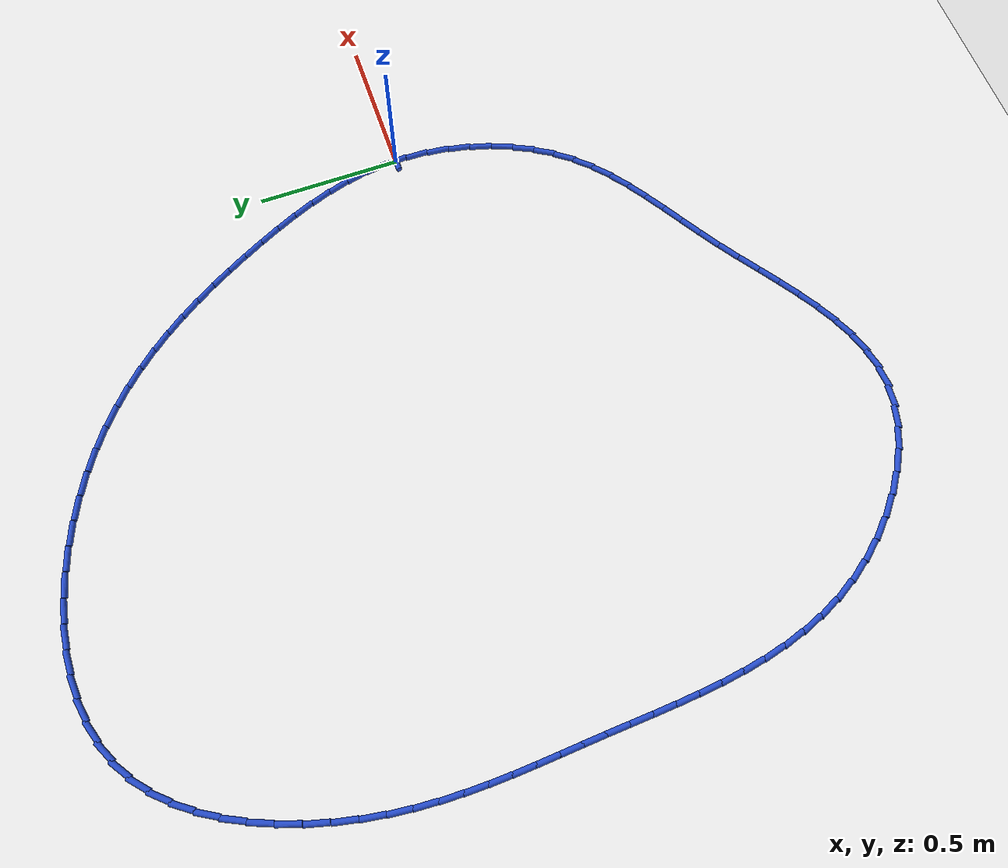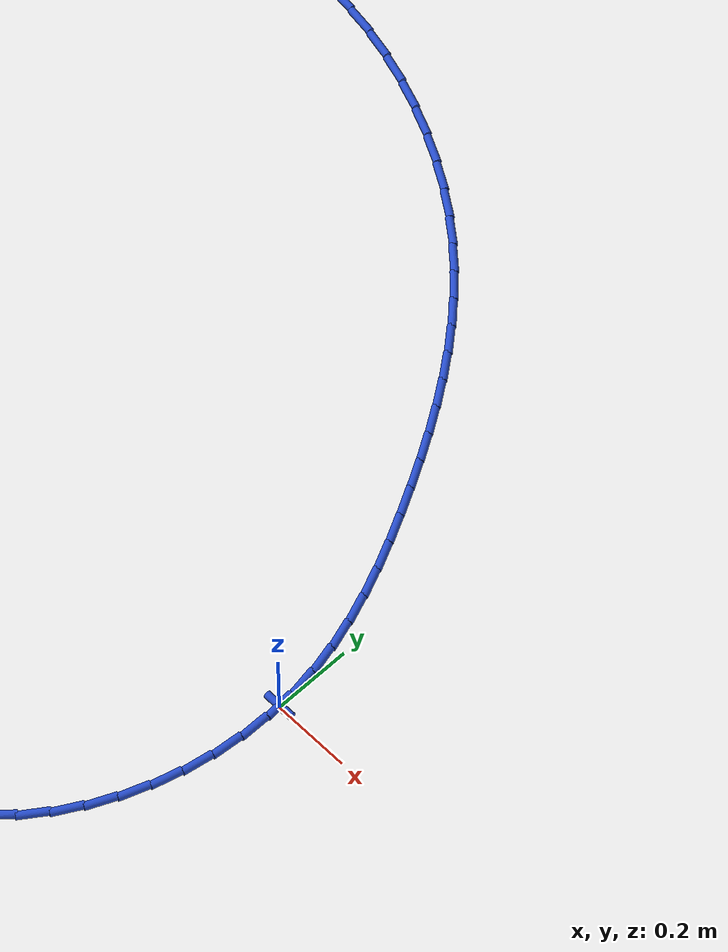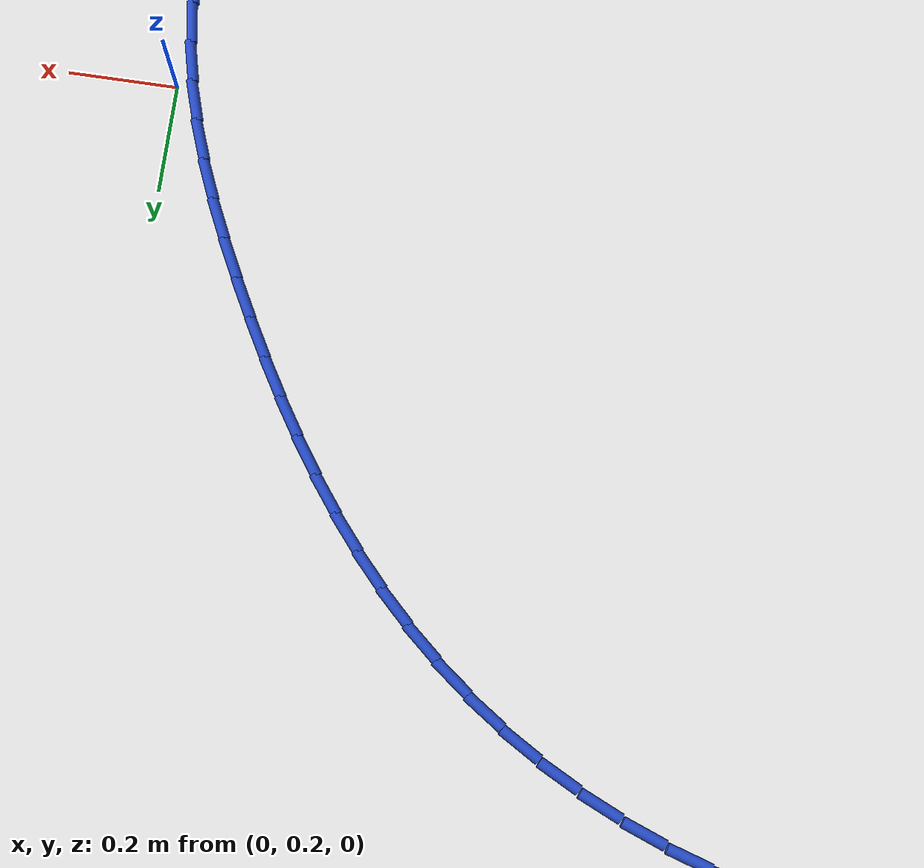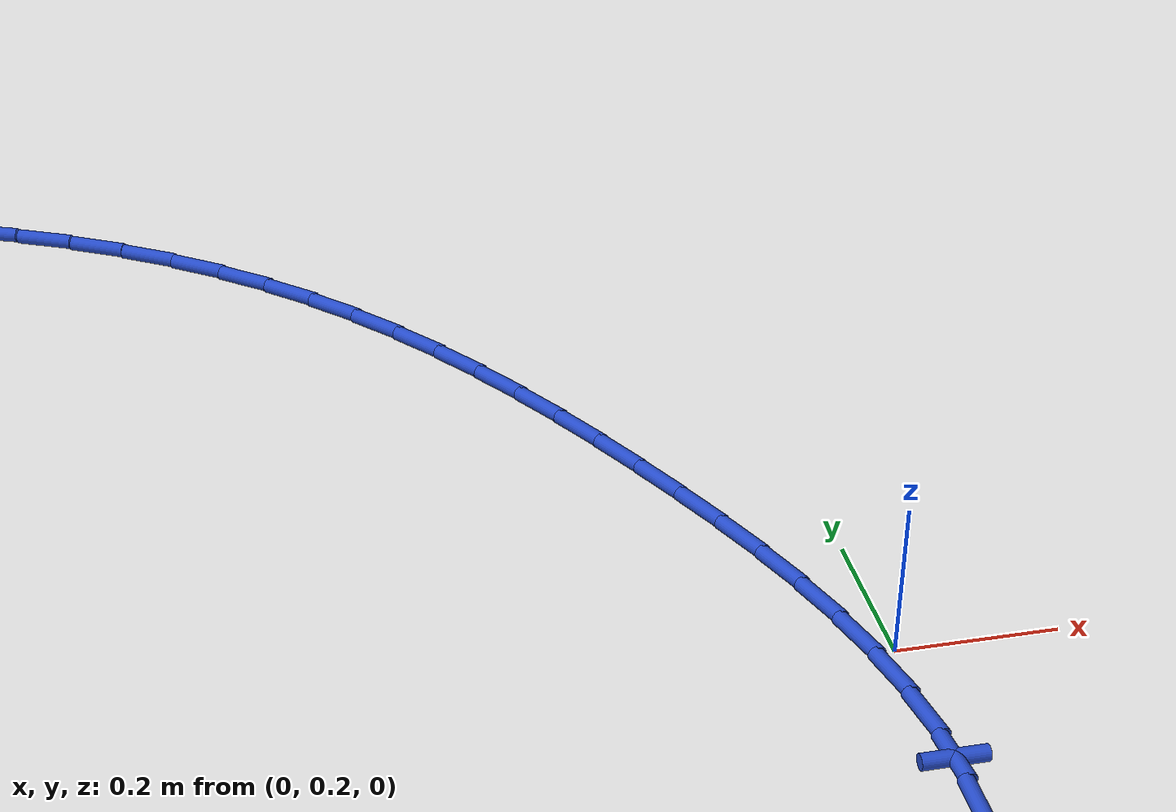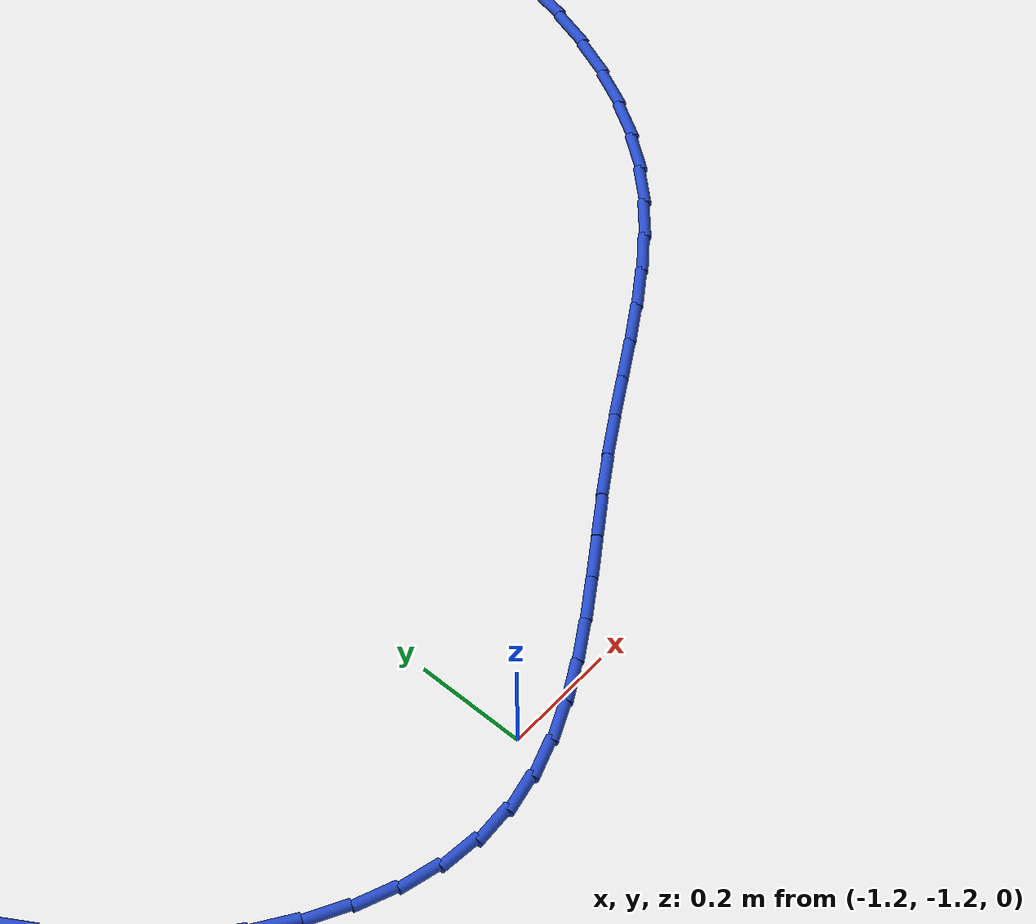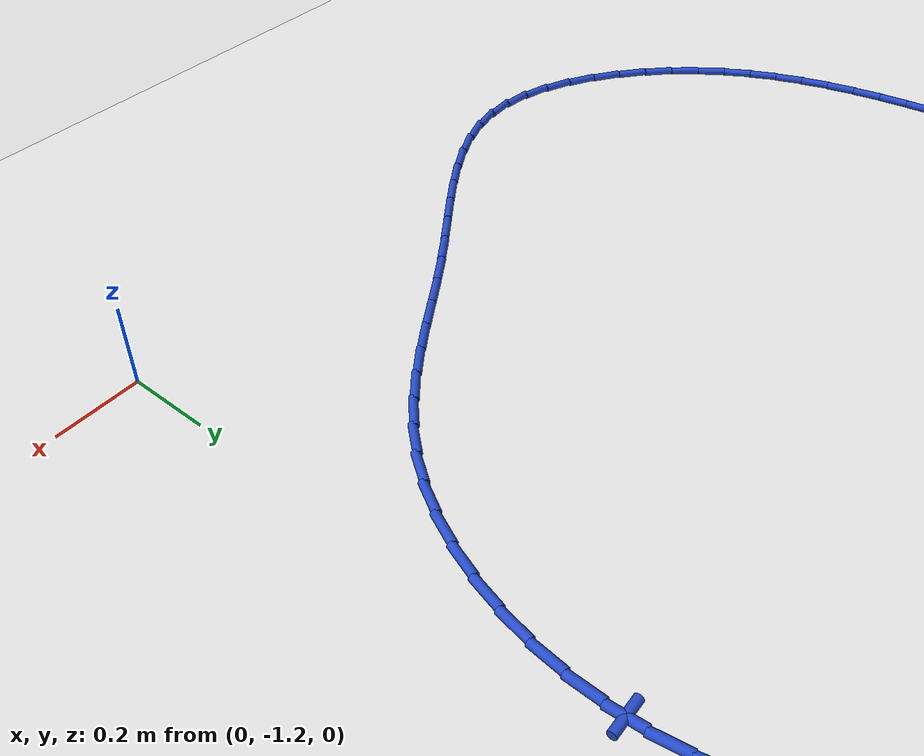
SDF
<sdf version="1.6">
 <world name="default">
  <light name="sun" type="directional">
   <pose>0 0 10 0 -0 0</pose>
   <diffuse>0.8 0.8 0.8 1</diffuse>
   <specular>0.2 0.2 0.2 1</specular>
   <attenuation>
    <range>1000</range>
    <constant>0.9</constant>
    <linear>0.01</linear>
    <quadratic>0.001</quadratic>
   </attenuation>
   <direction>-0.5 0.1 -0.9</direction>
  </light>
  <model name="ground_plane">
   <static>1</static>
   <link name="link">
    <collision name="collision">
     <geometry><plane><normal>0 0 1</normal><size>100 100</size></plane></geometry>
     <surface><friction><ode><mu>100</mu><mu2>50</mu2></ode></friction></surface>
    </collision>
    <visual name="visual">
     <cast_shadows>0</cast_shadows>
     <geometry><plane><normal>0 0 1</normal><size>100 100</size></plane></geometry>
     <material>
      <script><uri>file://media/materials/scripts/gazebo.material</uri><name>Gazebo/WhiteGlow</name></script>
     </material>
    </visual>
   </link>
  </model>
  <gravity>0 0 -9.8</gravity>
  <magnetic_field>6e-06 2.3e-05 -4.2e-05</magnetic_field>
  <atmosphere type="adiabatic"/>
  <physics name="default_physics" default="0" type="ode">
   <max_step_size>0.001</max_step_size>
   <real_time_factor>1</real_time_factor>
   <real_time_update_rate>1000</real_time_update_rate>
  </physics>
  <scene><ambient>0.4 0.4 0.4 1</ambient><background>0.7 0.7 0.7 1</background><shadows>1</shadows></scene>
  <spherical_coordinates>
   <surface_model>EARTH_WGS84</surface_model>
   <latitude_deg>0</latitude_deg>
   <longitude_deg>0</longitude_deg>
   <elevation>0</elevation>
   <heading_deg>0</heading_deg>
  </spherical_coordinates>
  <model name="line">
   <link name="link_0">
    <pose>-6.938893903907228e-18 1.3877787807814457e-17 0.01 0 1.57 -1.4888936543361022</pose>
    <collision name="collision">
     <geometry><cylinder><radius>0.01</radius><length>0.08</length></cylinder></geometry>
    </collision>
    <visual name="visual">
     <material>
      <script><name>Gazebo/Blue</name><uri>file://media/materials/scripts/gazebo.material</uri></script>
     </material>
     <geometry><cylinder><radius>0.01</radius><length>0.08</length></cylinder></geometry>
    </visual>
   </link>
   <link name="link_1">
    <pose>-0.006236742922896801 0.07597787763436015 0.01 0 1.57 -1.4052231200887637</pose>
    <collision name="collision">
     <geometry><cylinder><radius>0.01</radius><length>0.08</length></cylinder></geometry>
    </collision>
    <visual name="visual">
     <material>
      <script><name>Gazebo/Blue</name><uri>file://media/materials/scripts/gazebo.material</uri></script>
     </material>
     <geometry><cylinder><radius>0.01</radius><length>0.08</length></cylinder></geometry>
    </visual>
   </link>
   <link name="link_2">
    <pose>-0.01872526614852402 0.15071335084749068 0.01 0 1.57 -1.3305049539637646</pose>
    <collision name="collision">
     <geometry><cylinder><radius>0.01</radius><length>0.08</length></cylinder></geometry>
    </collision>
    <visual name="visual">
     <material>
      <script><name>Gazebo/Blue</name><uri>file://media/materials/scripts/gazebo.material</uri></script>
     </material>
     <geometry><cylinder><radius>0.01</radius><length>0.08</length></cylinder></geometry>
    </visual>
   </link>
   <link name="link_3">
    <pose>-0.03674393916641838 0.22425128700449098 0.01 0 1.57 -1.2653108638893957</pose>
    <collision name="collision">
     <geometry><cylinder><radius>0.01</radius><length>0.08</length></cylinder></geometry>
    </collision>
    <visual name="visual">
     <material>
      <script><name>Gazebo/Blue</name><uri>file://media/materials/scripts/gazebo.material</uri></script>
     </material>
     <geometry><cylinder><radius>0.01</radius><length>0.08</length></cylinder></geometry>
    </visual>
   </link>
   <link name="link_4">
    <pose>-0.059571131466116624 0.2966365534704605 0.01 0 1.57 -1.2097517085886498</pose>
    <collision name="collision">
     <geometry><cylinder><radius>0.01</radius><length>0.08</length></cylinder></geometry>
    </collision>
    <visual name="visual">
     <material>
      <script><name>Gazebo/Blue</name><uri>file://media/materials/scripts/gazebo.material</uri></script>
     </material>
     <geometry><cylinder><radius>0.01</radius><length>0.08</length></cylinder></geometry>
    </visual>
   </link>
   <link name="link_5">
    <pose>-0.08648521253715538 0.36791401761049825 0.01 0 1.57 -1.1636519283027307</pose>
    <collision name="collision">
     <geometry><cylinder><radius>0.01</radius><length>0.08</length></cylinder></geometry>
    </collision>
    <visual name="visual">
     <material>
      <script><name>Gazebo/Blue</name><uri>file://media/materials/scripts/gazebo.material</uri></script>
     </material>
     <geometry><cylinder><radius>0.01</radius><length>0.08</length></cylinder></geometry>
    </visual>
   </link>
   <link name="link_6">
    <pose>-0.11676455186907142 0.43812854678970387 0.01 0 1.57 -1.126703823395102</pose>
    <collision name="collision">
     <geometry><cylinder><radius>0.01</radius><length>0.08</length></cylinder></geometry>
    </collision>
    <visual name="visual">
     <material>
      <script><name>Gazebo/Blue</name><uri>file://media/materials/scripts/gazebo.material</uri></script>
     </material>
     <geometry><cylinder><radius>0.01</radius><length>0.08</length></cylinder></geometry>
    </visual>
   </link>
   <link name="link_7">
    <pose>-0.14968751895140148 0.5073250083731766 0.01 0 1.57 -1.0985865208283223</pose>
    <collision name="collision">
     <geometry><cylinder><radius>0.01</radius><length>0.08</length></cylinder></geometry>
    </collision>
    <visual name="visual">
     <material>
      <script><name>Gazebo/Blue</name><uri>file://media/materials/scripts/gazebo.material</uri></script>
     </material>
     <geometry><cylinder><radius>0.01</radius><length>0.08</length></cylinder></geometry>
    </visual>
   </link>
   <link name="link_8">
    <pose>-0.1845324832736822 0.5755482697260156 0.01 0 1.57 -1.077847580366099</pose>
    <collision name="collision">
     <geometry><cylinder><radius>0.01</radius><length>0.08</length></cylinder></geometry>
    </collision>
    <visual name="visual">
     <material>
      <script><name>Gazebo/Blue</name><uri>file://media/materials/scripts/gazebo.material</uri></script>
     </material>
     <geometry><cylinder><radius>0.01</radius><length>0.08</length></cylinder></geometry>
    </visual>
   </link>
   <link name="link_9">
    <pose>-0.2206705042800834 0.64282162328413 0.01 0 1.57 -1.0559902220845883</pose>
    <collision name="collision">
     <geometry><cylinder><radius>0.01</radius><length>0.08</length></cylinder></geometry>
    </collision>
    <visual name="visual">
     <material>
      <script><name>Gazebo/Blue</name><uri>file://media/materials/scripts/gazebo.material</uri></script>
     </material>
     <geometry><cylinder><radius>0.01</radius><length>0.08</length></cylinder></geometry>
    </visual>
   </link>
   <link name="link_10">
    <pose>-0.2581170499248901 0.7090183660709766 0.01 0 1.57 -1.0293994203446202</pose>
    <collision name="collision">
     <geometry><cylinder><radius>0.01</radius><length>0.08</length></cylinder></geometry>
    </collision>
    <visual name="visual">
     <material>
      <script><name>Gazebo/Blue</name><uri>file://media/materials/scripts/gazebo.material</uri></script>
     </material>
     <geometry><cylinder><radius>0.01</radius><length>0.08</length></cylinder></geometry>
    </visual>
   </link>
   <link name="link_11">
    <pose>-0.29716124830380514 0.7739480967492063 0.01 0 1.57 -0.9980277353000951</pose>
    <collision name="collision">
     <geometry><cylinder><radius>0.01</radius><length>0.08</length></cylinder></geometry>
    </collision>
    <visual name="visual">
     <material>
      <script><name>Gazebo/Blue</name><uri>file://media/materials/scripts/gazebo.material</uri></script>
     </material>
     <geometry><cylinder><radius>0.01</radius><length>0.08</length></cylinder></geometry>
    </visual>
   </link>
   <link name="link_12">
    <pose>-0.3380932247508772 0.8374201818598043 0.01 0 1.57 -0.9618832202093195</pose>
    <collision name="collision">
     <geometry><cylinder><radius>0.01</radius><length>0.08</length></cylinder></geometry>
    </collision>
    <visual name="visual">
     <material>
      <script><name>Gazebo/Blue</name><uri>file://media/materials/scripts/gazebo.material</uri></script>
     </material>
     <geometry><cylinder><radius>0.01</radius><length>0.08</length></cylinder></geometry>
    </visual>
   </link>
   <link name="link_13">
    <pose>-0.38120310460015494 0.8992439879437555 0.01 0 1.57 -0.9210380110641261</pose>
    <collision name="collision">
     <geometry><cylinder><radius>0.01</radius><length>0.08</length></cylinder></geometry>
    </collision>
    <visual name="visual">
     <material>
      <script><name>Gazebo/Blue</name><uri>file://media/materials/scripts/gazebo.material</uri></script>
     </material>
     <geometry><cylinder><radius>0.01</radius><length>0.08</length></cylinder></geometry>
    </visual>
   </link>
   <link name="link_14">
    <pose>-0.42678101318568673 0.9592288815420446 0.01 0 1.57 -0.8756514801662385</pose>
    <collision name="collision">
     <geometry><cylinder><radius>0.01</radius><length>0.08</length></cylinder></geometry>
    </collision>
    <visual name="visual">
     <material>
      <script><name>Gazebo/Blue</name><uri>file://media/materials/scripts/gazebo.material</uri></script>
     </material>
     <geometry><cylinder><radius>0.01</radius><length>0.08</length></cylinder></geometry>
    </visual>
   </link>
   <link name="link_15">
    <pose>-0.47511707584152135 1.0171842291956568 0.01 0 1.57 -0.8259924119694636</pose>
    <collision name="collision">
     <geometry><cylinder><radius>0.01</radius><length>0.08</length></cylinder></geometry>
    </collision>
    <visual name="visual">
     <material>
      <script><name>Gazebo/Blue</name><uri>file://media/materials/scripts/gazebo.material</uri></script>
     </material>
     <geometry><cylinder><radius>0.01</radius><length>0.08</length></cylinder></geometry>
    </visual>
   </link>
   <link name="link_16">
    <pose>-0.5265014179017073 1.072919397445577 0.01 0 1.57 -0.7724564619438936</pose>
    <collision name="collision">
     <geometry><cylinder><radius>0.01</radius><length>0.08</length></cylinder></geometry>
    </collision>
    <visual name="visual">
     <material>
      <script><name>Gazebo/Blue</name><uri>file://media/materials/scripts/gazebo.material</uri></script>
     </material>
     <geometry><cylinder><radius>0.01</radius><length>0.08</length></cylinder></geometry>
    </visual>
   </link>
   <link name="link_17">
    <pose>-0.5812241647002934 1.1262437528327902 0.01 0 1.57 -0.715574430933978</pose>
    <collision name="collision">
     <geometry><cylinder><radius>0.01</radius><length>0.08</length></cylinder></geometry>
    </collision>
    <visual name="visual">
     <material>
      <script><name>Gazebo/Blue</name><uri>file://media/materials/scripts/gazebo.material</uri></script>
     </material>
     <geometry><cylinder><radius>0.01</radius><length>0.08</length></cylinder></geometry>
    </visual>
   </link>
   <link name="link_18">
    <pose>-0.6395754415713277 1.176966661898281 0.01 0 1.57 -0.656007119483028</pose>
    <collision name="collision">
     <geometry><cylinder><radius>0.01</radius><length>0.08</length></cylinder></geometry>
    </collision>
    <visual name="visual">
     <material>
      <script><name>Gazebo/Blue</name><uri>file://media/materials/scripts/gazebo.material</uri></script>
     </material>
     <geometry><cylinder><radius>0.01</radius><length>0.08</length></cylinder></geometry>
    </visual>
   </link>
   <link name="link_19">
    <pose>-0.7018453738488593 1.2248974911830346 0.01 0 1.57 -0.5945751520440786</pose>
    <collision name="collision">
     <geometry><cylinder><radius>0.01</radius><length>0.08</length></cylinder></geometry>
    </collision>
    <visual name="visual">
     <material>
      <script><name>Gazebo/Blue</name><uri>file://media/materials/scripts/gazebo.material</uri></script>
     </material>
     <geometry><cylinder><radius>0.01</radius><length>0.08</length></cylinder></geometry>
    </visual>
   </link>
   <link name="link_20">
    <pose>-0.7683124132928517 1.2698426539536425 0.01 0 1.57 -0.5335867637004317</pose>
    <collision name="collision">
     <geometry><cylinder><radius>0.01</radius><length>0.08</length></cylinder></geometry>
    </collision>
    <visual name="visual">
     <material>
      <script><name>Gazebo/Blue</name><uri>file://media/materials/scripts/gazebo.material</uri></script>
     </material>
     <geometry><cylinder><radius>0.01</radius><length>0.08</length></cylinder></geometry>
    </visual>
   </link>
   <link name="link_21">
    <pose>-0.8388313485755986 1.3115013817910253 0.01 0 1.57 -0.4743137648658727</pose>
    <collision name="collision">
     <geometry><cylinder><radius>0.01</radius><length>0.08</length></cylinder></geometry>
    </collision>
    <visual name="visual">
     <material>
      <script><name>Gazebo/Blue</name><uri>file://media/materials/scripts/gazebo.material</uri></script>
     </material>
     <geometry><cylinder><radius>0.01</radius><length>0.08</length></cylinder></geometry>
    </visual>
   </link>
   <link name="link_22">
    <pose>-0.9127234469197631 1.349437931740964 0.01 0 1.57 -0.4154577101667543</pose>
    <collision name="collision">
     <geometry><cylinder><radius>0.01</radius><length>0.08</length></cylinder></geometry>
    </collision>
    <visual name="visual">
     <material>
      <script><name>Gazebo/Blue</name><uri>file://media/materials/scripts/gazebo.material</uri></script>
     </material>
     <geometry><cylinder><radius>0.01</radius><length>0.08</length></cylinder></geometry>
    </visual>
   </link>
   <link name="link_23">
    <pose>-0.9892759635184181 1.3832079562132207 0.01 0 1.57 -0.3556575784988701</pose>
    <collision name="collision">
     <geometry><cylinder><radius>0.01</radius><length>0.08</length></cylinder></geometry>
    </collision>
    <visual name="visual">
     <material>
      <script><name>Gazebo/Blue</name><uri>file://media/materials/scripts/gazebo.material</uri></script>
     </material>
     <geometry><cylinder><radius>0.01</radius><length>0.08</length></cylinder></geometry>
    </visual>
   </link>
   <link name="link_24">
    <pose>-1.0677761535646366 1.4123671076175566 0.01 0 1.57 -0.29356559837858803</pose>
    <collision name="collision">
     <geometry><cylinder><radius>0.01</radius><length>0.08</length></cylinder></geometry>
    </collision>
    <visual name="visual">
     <material>
      <script><name>Gazebo/Blue</name><uri>file://media/materials/scripts/gazebo.material</uri></script>
     </material>
     <geometry><cylinder><radius>0.01</radius><length>0.08</length></cylinder></geometry>
    </visual>
   </link>
   <link name="link_25">
    <pose>-1.1475112722514929 1.436471038363735 0.01 0 1.57 -0.22778578945561878</pose>
    <collision name="collision">
     <geometry><cylinder><radius>0.01</radius><length>0.08</length></cylinder></geometry>
    </collision>
    <visual name="visual">
     <material>
      <script><name>Gazebo/Blue</name><uri>file://media/materials/scripts/gazebo.material</uri></script>
     </material>
     <geometry><cylinder><radius>0.01</radius><length>0.08</length></cylinder></geometry>
    </visual>
   </link>
   <link name="link_26">
    <pose>-1.2277685747720595 1.4550754008615165 0.01 0 1.57 -0.15682522923688244</pose>
    <collision name="collision">
     <geometry><cylinder><radius>0.01</radius><length>0.08</length></cylinder></geometry>
    </collision>
    <visual name="visual">
     <material>
      <script><name>Gazebo/Blue</name><uri>file://media/materials/scripts/gazebo.material</uri></script>
     </material>
     <geometry><cylinder><radius>0.01</radius><length>0.08</length></cylinder></geometry>
    </visual>
   </link>
   <link name="link_27">
    <pose>-1.3078353163194103 1.4677358475206637 0.01 0 1.57 -0.07906564179198461</pose>
    <collision name="collision">
     <geometry><cylinder><radius>0.01</radius><length>0.08</length></cylinder></geometry>
    </collision>
    <visual name="visual">
     <material>
      <script><name>Gazebo/Blue</name><uri>file://media/materials/scripts/gazebo.material</uri></script>
     </material>
     <geometry><cylinder><radius>0.01</radius><length>0.08</length></cylinder></geometry>
    </visual>
   </link>
   <link name="link_28">
    <pose>-1.3869987520866187 1.4740080307509378 0.01 0 1.57 0.007226781807410081</pose>
    <collision name="collision">
     <geometry><cylinder><radius>0.01</radius><length>0.08</length></cylinder></geometry>
    </collision>
    <visual name="visual">
     <material>
      <script><name>Gazebo/Blue</name><uri>file://media/materials/scripts/gazebo.material</uri></script>
     </material>
     <geometry><cylinder><radius>0.01</radius><length>0.08</length></cylinder></geometry>
    </visual>
   </link>
   <link name="link_29">
    <pose>-1.4645461372667574 1.473447602962101 0.01 0 1.57 0.10382017802178085</pose>
    <collision name="collision">
     <geometry><cylinder><radius>0.01</radius><length>0.08</length></cylinder></geometry>
    </collision>
    <visual name="visual">
     <material>
      <script><name>Gazebo/Blue</name><uri>file://media/materials/scripts/gazebo.material</uri></script>
     </material>
     <geometry><cylinder><radius>0.01</radius><length>0.08</length></cylinder></geometry>
    </visual>
   </link>
   <link name="link_30">
    <pose>-1.5397647270529005 1.4656102165639155 0.01 0 1.57 0.2123141071399242</pose>
    <collision name="collision">
     <geometry><cylinder><radius>0.01</radius><length>0.08</length></cylinder></geometry>
    </collision>
    <visual name="visual">
     <material>
      <script><name>Gazebo/Blue</name><uri>file://media/materials/scripts/gazebo.material</uri></script>
     </material>
     <geometry><cylinder><radius>0.01</radius><length>0.08</length></cylinder></geometry>
    </visual>
   </link>
   <link name="link_31">
    <pose>-1.6119417766381214 1.4500515239661427 0.01 0 1.57 0.3337602956491038</pose>
    <collision name="collision">
     <geometry><cylinder><radius>0.01</radius><length>0.08</length></cylinder></geometry>
    </collision>
    <visual name="visual">
     <material>
      <script><name>Gazebo/Blue</name><uri>file://media/materials/scripts/gazebo.material</uri></script>
     </material>
     <geometry><cylinder><radius>0.01</radius><length>0.08</length></cylinder></geometry>
    </visual>
   </link>
   <link name="link_32">
    <pose>-1.6803645412154928 1.4263271775785444 0.01 0 1.57 0.46809674895622266</pose>
    <collision name="collision">
     <geometry><cylinder><radius>0.01</radius><length>0.08</length></cylinder></geometry>
    </collision>
    <visual name="visual">
     <material>
      <script><name>Gazebo/Blue</name><uri>file://media/materials/scripts/gazebo.material</uri></script>
     </material>
     <geometry><cylinder><radius>0.01</radius><length>0.08</length></cylinder></geometry>
    </visual>
   </link>
   <link name="link_33">
    <pose>-1.744320275978088 1.3939928298108826 0.01 0 1.57 0.6101407016997956</pose>
    <collision name="collision">
     <geometry><cylinder><radius>0.01</radius><length>0.08</length></cylinder></geometry>
    </collision>
    <visual name="visual">
     <material>
      <script><name>Gazebo/Blue</name><uri>file://media/materials/scripts/gazebo.material</uri></script>
     </material>
     <geometry><cylinder><radius>0.01</radius><length>0.08</length></cylinder></geometry>
    </visual>
   </link>
   <link name="link_34">
    <pose>-1.803215600514641 1.3528174407704385 0.01 0 1.57 0.7419895006302012</pose>
    <collision name="collision">
     <geometry><cylinder><radius>0.01</radius><length>0.08</length></cylinder></geometry>
    </collision>
    <visual name="visual">
     <material>
      <script><name>Gazebo/Blue</name><uri>file://media/materials/scripts/gazebo.material</uri></script>
     </material>
     <geometry><cylinder><radius>0.01</radius><length>0.08</length></cylinder></geometry>
    </visual>
   </link>
   <link name="link_35">
    <pose>-1.8569892028383248 1.3035207925404613 0.01 0 1.57 0.8584294016450874</pose>
    <collision name="collision">
     <geometry><cylinder><radius>0.01</radius><length>0.08</length></cylinder></geometry>
    </collision>
    <visual name="visual">
     <material>
      <script><name>Gazebo/Blue</name><uri>file://media/materials/scripts/gazebo.material</uri></script>
     </material>
     <geometry><cylinder><radius>0.01</radius><length>0.08</length></cylinder></geometry>
    </visual>
   </link>
   <link name="link_36">
    <pose>-1.9057279670662706 1.2470874980152777 0.01 0 1.57 0.9602731234963772</pose>
    <collision name="collision">
     <geometry><cylinder><radius>0.01</radius><length>0.08</length></cylinder></geometry>
    </collision>
    <visual name="visual">
     <material>
      <script><name>Gazebo/Blue</name><uri>file://media/materials/scripts/gazebo.material</uri></script>
     </material>
     <geometry><cylinder><radius>0.01</radius><length>0.08</length></cylinder></geometry>
    </visual>
   </link>
   <link name="link_37">
    <pose>-1.9495187835708099 1.1845021812674421 0.01 0 1.57 1.04927326002681</pose>
    <collision name="collision">
     <geometry><cylinder><radius>0.01</radius><length>0.08</length></cylinder></geometry>
    </collision>
    <visual name="visual">
     <material>
      <script><name>Gazebo/Blue</name><uri>file://media/materials/scripts/gazebo.material</uri></script>
     </material>
     <geometry><cylinder><radius>0.01</radius><length>0.08</length></cylinder></geometry>
    </visual>
   </link>
   <link name="link_38">
    <pose>-1.9884485427242748 1.1167494663695108 0.01 0 1.57 1.1275041290200896</pose>
    <collision name="collision">
     <geometry><cylinder><radius>0.01</radius><length>0.08</length></cylinder></geometry>
    </collision>
    <visual name="visual">
     <material>
      <script><name>Gazebo/Blue</name><uri>file://media/materials/scripts/gazebo.material</uri></script>
     </material>
     <geometry><cylinder><radius>0.01</radius><length>0.08</length></cylinder></geometry>
    </visual>
   </link>
   <link name="link_39">
    <pose>-2.022604134898998 1.04481397739404 0.01 0 1.57 1.1970217109278218</pose>
    <collision name="collision">
     <geometry><cylinder><radius>0.01</radius><length>0.08</length></cylinder></geometry>
    </collision>
    <visual name="visual">
     <material>
      <script><name>Gazebo/Blue</name><uri>file://media/materials/scripts/gazebo.material</uri></script>
     </material>
     <geometry><cylinder><radius>0.01</radius><length>0.08</length></cylinder></geometry>
    </visual>
   </link>
   <link name="link_40">
    <pose>-2.0520724504673105 0.9696803384135848 0.01 0 1.57 1.2597237483169494</pose>
    <collision name="collision">
     <geometry><cylinder><radius>0.01</radius><length>0.08</length></cylinder></geometry>
    </collision>
    <visual name="visual">
     <material>
      <script><name>Gazebo/Blue</name><uri>file://media/materials/scripts/gazebo.material</uri></script>
     </material>
     <geometry><cylinder><radius>0.01</radius><length>0.08</length></cylinder></geometry>
    </visual>
   </link>
   <link name="link_41">
    <pose>-2.0769403798015444 0.8923331735007017 0.01 0 1.57 1.3173266284146765</pose>
    <collision name="collision">
     <geometry><cylinder><radius>0.01</radius><length>0.08</length></cylinder></geometry>
    </collision>
    <visual name="visual">
     <material>
      <script><name>Gazebo/Blue</name><uri>file://media/materials/scripts/gazebo.material</uri></script>
     </material>
     <geometry><cylinder><radius>0.01</radius><length>0.08</length></cylinder></geometry>
    </visual>
   </link>
   <link name="link_42">
    <pose>-2.097294813274031 0.813757106727946 0.01 0 1.57 1.3714038516852367</pose>
    <collision name="collision">
     <geometry><cylinder><radius>0.01</radius><length>0.08</length></cylinder></geometry>
    </collision>
    <visual name="visual">
     <material>
      <script><name>Gazebo/Blue</name><uri>file://media/materials/scripts/gazebo.material</uri></script>
     </material>
     <geometry><cylinder><radius>0.01</radius><length>0.08</length></cylinder></geometry>
    </visual>
   </link>
   <link name="link_43">
    <pose>-2.113222641257102 0.7349367621678731 0.01 0 1.57 1.423362167279427</pose>
    <collision name="collision">
     <geometry><cylinder><radius>0.01</radius><length>0.08</length></cylinder></geometry>
    </collision>
    <visual name="visual">
     <material>
      <script><name>Gazebo/Blue</name><uri>file://media/materials/scripts/gazebo.material</uri></script>
     </material>
     <geometry><cylinder><radius>0.01</radius><length>0.08</length></cylinder></geometry>
    </visual>
   </link>
   <link name="link_44">
    <pose>-2.1248230901954406 0.6568254575205942 0.01 0 1.57 1.4723679535520928</pose>
    <collision name="collision">
     <geometry><cylinder><radius>0.01</radius><length>0.08</length></cylinder></geometry>
    </collision>
    <visual name="visual">
     <material>
      <script><name>Gazebo/Blue</name><uri>file://media/materials/scripts/gazebo.material</uri></script>
     </material>
     <geometry><cylinder><radius>0.01</radius><length>0.08</length></cylinder></geometry>
    </visual>
   </link>
   <link name="link_45">
    <pose>-2.132431367415886 0.5797776403452065 0.01 0 1.57 1.5161892230488514</pose>
    <collision name="collision">
     <geometry><cylinder><radius>0.01</radius><length>0.08</length></cylinder></geometry>
    </collision>
    <visual name="visual">
     <material>
      <script><name>Gazebo/Blue</name><uri>file://media/materials/scripts/gazebo.material</uri></script>
     </material>
     <geometry><cylinder><radius>0.01</radius><length>0.08</length></cylinder></geometry>
    </visual>
   </link>
   <link name="link_46">
    <pose>-2.136594836351145 0.5036093503608603 0.01 0 1.57 1.553927529335445</pose>
    <collision name="collision">
     <geometry><cylinder><radius>0.01</radius><length>0.08</length></cylinder></geometry>
    </collision>
    <visual name="visual">
     <material>
      <script><name>Gazebo/Blue</name><uri>file://media/materials/scripts/gazebo.material</uri></script>
     </material>
     <geometry><cylinder><radius>0.01</radius><length>0.08</length></cylinder></geometry>
    </visual>
   </link>
   <link name="link_47">
    <pose>-2.1378684146252858 0.42811745632842263 0.01 0 1.57 -1.5566488549131963</pose>
    <collision name="collision">
     <geometry><cylinder><radius>0.01</radius><length>0.08</length></cylinder></geometry>
    </collision>
    <visual name="visual">
     <material>
      <script><name>Gazebo/Blue</name><uri>file://media/materials/scripts/gazebo.material</uri></script>
     </material>
     <geometry><cylinder><radius>0.01</radius><length>0.08</length></cylinder></geometry>
    </visual>
   </link>
   <link name="link_48">
    <pose>-2.1368070198623768 0.3530988270087599 0.01 0 1.57 -1.532801144761632</pose>
    <collision name="collision">
     <geometry><cylinder><radius>0.01</radius><length>0.08</length></cylinder></geometry>
    </collision>
    <visual name="visual">
     <material>
      <script><name>Gazebo/Blue</name><uri>file://media/materials/scripts/gazebo.material</uri></script>
     </material>
     <geometry><cylinder><radius>0.01</radius><length>0.08</length></cylinder></geometry>
    </visual>
   </link>
   <link name="link_49">
    <pose>-2.1339655696864877 0.278350331162738 0.01 0 1.57 -1.5163976308151623</pose>
    <collision name="collision">
     <geometry><cylinder><radius>0.01</radius><length>0.08</length></cylinder></geometry>
    </collision>
    <visual name="visual">
     <material>
      <script><name>Gazebo/Blue</name><uri>file://media/materials/scripts/gazebo.material</uri></script>
     </material>
     <geometry><cylinder><radius>0.01</radius><length>0.08</length></cylinder></geometry>
    </visual>
   </link>
   <link name="link_50">
    <pose>-2.1298989817216873 0.20366883755122367 0.01 0 1.57 -1.5075693190315913</pose>
    <collision name="collision">
     <geometry><cylinder><radius>0.01</radius><length>0.08</length></cylinder></geometry>
    </collision>
    <visual name="visual">
     <material>
      <script><name>Gazebo/Blue</name><uri>file://media/materials/scripts/gazebo.material</uri></script>
     </material>
     <geometry><cylinder><radius>0.01</radius><length>0.08</length></cylinder></geometry>
    </visual>
   </link>
   <link name="link_51">
    <pose>-2.1251621735920447 0.1288512149350837 0.01 0 1.57 -1.5063260327311885</pose>
    <collision name="collision">
     <geometry><cylinder><radius>0.01</radius><length>0.08</length></cylinder></geometry>
    </collision>
    <visual name="visual">
     <material>
      <script><name>Gazebo/Blue</name><uri>file://media/materials/scripts/gazebo.material</uri></script>
     </material>
     <geometry><cylinder><radius>0.01</radius><length>0.08</length></cylinder></geometry>
    </visual>
   </link>
   <link name="link_52">
    <pose>-2.120310062921628 0.05369433207518429 0.01 0 1.57 -1.5121587089092583</pose>
    <collision name="collision">
     <geometry><cylinder><radius>0.01</radius><length>0.08</length></cylinder></geometry>
    </collision>
    <visual name="visual">
     <material>
      <script><name>Gazebo/Blue</name><uri>file://media/materials/scripts/gazebo.material</uri></script>
     </material>
     <geometry><cylinder><radius>0.01</radius><length>0.08</length></cylinder></geometry>
    </visual>
   </link>
   <link name="link_53">
    <pose>-2.115866802681247 -0.021993710995424944 0.01 0 1.57 -1.5170366126352326</pose>
    <collision name="collision">
     <geometry><cylinder><radius>0.01</radius><length>0.08</length></cylinder></geometry>
    </collision>
    <visual name="visual">
     <material>
      <script><name>Gazebo/Blue</name><uri>file://media/materials/scripts/gazebo.material</uri></script>
     </material>
     <geometry><cylinder><radius>0.01</radius><length>0.08</length></cylinder></geometry>
    </visual>
   </link>
   <link name="link_54">
    <pose>-2.1117665913370693 -0.0981894391649908 0.01 0 1.57 -1.5139304618903984</pose>
    <collision name="collision">
     <geometry><cylinder><radius>0.01</radius><length>0.08</length></cylinder></geometry>
    </collision>
    <visual name="visual">
     <material>
      <script><name>Gazebo/Blue</name><uri>file://media/materials/scripts/gazebo.material</uri></script>
     </material>
     <geometry><cylinder><radius>0.01</radius><length>0.08</length></cylinder></geometry>
    </visual>
   </link>
   <link name="link_55">
    <pose>-2.107412453164088 -0.17467546121072178 0.01 0 1.57 -1.5026606530161133</pose>
    <collision name="collision">
     <geometry><cylinder><radius>0.01</radius><length>0.08</length></cylinder></geometry>
    </collision>
    <visual name="visual">
     <material>
      <script><name>Gazebo/Blue</name><uri>file://media/materials/scripts/gazebo.material</uri></script>
     </material>
     <geometry><cylinder><radius>0.01</radius><length>0.08</length></cylinder></geometry>
    </visual>
   </link>
   <link name="link_56">
    <pose>-2.1021884444574 -0.25122746125694034 0.01 0 1.57 -1.4831889535437863</pose>
    <collision name="collision">
     <geometry><cylinder><radius>0.01</radius><length>0.08</length></cylinder></geometry>
    </collision>
    <visual name="visual">
     <material>
      <script><name>Gazebo/Blue</name><uri>file://media/materials/scripts/gazebo.material</uri></script>
     </material>
     <geometry><cylinder><radius>0.01</radius><length>0.08</length></cylinder></geometry>
    </visual>
   </link>
   <link name="link_57">
    <pose>-2.095478621512103 -0.327621123427969 0.01 0 1.57 -1.4553864080668322</pose>
    <collision name="collision">
     <geometry><cylinder><radius>0.01</radius><length>0.08</length></cylinder></geometry>
    </collision>
    <visual name="visual">
     <material>
      <script><name>Gazebo/Blue</name><uri>file://media/materials/scripts/gazebo.material</uri></script>
     </material>
     <geometry><cylinder><radius>0.01</radius><length>0.08</length></cylinder></geometry>
    </visual>
   </link>
   <link name="link_58">
    <pose>-2.0866670406232912 -0.40363213184812896 0.01 0 1.57 -1.4190713421723953</pose>
    <collision name="collision">
     <geometry><cylinder><radius>0.01</radius><length>0.08</length></cylinder></geometry>
    </collision>
    <visual name="visual">
     <material>
      <script><name>Gazebo/Blue</name><uri>file://media/materials/scripts/gazebo.material</uri></script>
     </material>
     <geometry><cylinder><radius>0.01</radius><length>0.08</length></cylinder></geometry>
    </visual>
   </link>
   <link name="link_59">
    <pose>-2.075137758086063 -0.4790361706417448 0.01 0 1.57 -1.374066477622867</pose>
    <collision name="collision">
     <geometry><cylinder><radius>0.01</radius><length>0.08</length></cylinder></geometry>
    </collision>
    <visual name="visual">
     <material>
      <script><name>Gazebo/Blue</name><uri>file://media/materials/scripts/gazebo.material</uri></script>
     </material>
     <geometry><cylinder><radius>0.01</radius><length>0.08</length></cylinder></geometry>
    </visual>
   </link>
   <link name="link_60">
    <pose>-2.0602748301955134 -0.5536089239331377 0.01 0 1.57 -1.3202791443195498</pose>
    <collision name="collision">
     <geometry><cylinder><radius>0.01</radius><length>0.08</length></cylinder></geometry>
    </collision>
    <visual name="visual">
     <material>
      <script><name>Gazebo/Blue</name><uri>file://media/materials/scripts/gazebo.material</uri></script>
     </material>
     <geometry><cylinder><radius>0.01</radius><length>0.08</length></cylinder></geometry>
    </visual>
   </link>
   <link name="link_61">
    <pose>-2.0414623132467398 -0.6271260758466302 0.01 0 1.57 -1.257805128864987</pose>
    <collision name="collision">
     <geometry><cylinder><radius>0.01</radius><length>0.08</length></cylinder></geometry>
    </collision>
    <visual name="visual">
     <material>
      <script><name>Gazebo/Blue</name><uri>file://media/materials/scripts/gazebo.material</uri></script>
     </material>
     <geometry><cylinder><radius>0.01</radius><length>0.08</length></cylinder></geometry>
    </visual>
   </link>
   <link name="link_62">
    <pose>-2.018084263534839 -0.6993633105065449 0.01 0 1.57 -1.1870482874479105</pose>
    <collision name="collision">
     <geometry><cylinder><radius>0.01</radius><length>0.08</length></cylinder></geometry>
    </collision>
    <visual name="visual">
     <material>
      <script><name>Gazebo/Blue</name><uri>file://media/materials/scripts/gazebo.material</uri></script>
     </material>
     <geometry><cylinder><radius>0.01</radius><length>0.08</length></cylinder></geometry>
    </visual>
   </link>
   <link name="link_63">
    <pose>-1.9895247373549059 -0.7700963120372039 0.01 0 1.57 -1.1088344318865353</pose>
    <collision name="collision">
     <geometry><cylinder><radius>0.01</radius><length>0.08</length></cylinder></geometry>
    </collision>
    <visual name="visual">
     <material>
      <script><name>Gazebo/Blue</name><uri>file://media/materials/scripts/gazebo.material</uri></script>
     </material>
     <geometry><cylinder><radius>0.01</radius><length>0.08</length></cylinder></geometry>
    </visual>
   </link>
   <link name="link_64">
    <pose>-1.955167791002038 -0.8391007645629296 0.01 0 1.57 -1.0244832976122595</pose>
    <collision name="collision">
     <geometry><cylinder><radius>0.01</radius><length>0.08</length></cylinder></geometry>
    </collision>
    <visual name="visual">
     <material>
      <script><name>Gazebo/Blue</name><uri>file://media/materials/scripts/gazebo.material</uri></script>
     </material>
     <geometry><cylinder><radius>0.01</radius><length>0.08</length></cylinder></geometry>
    </visual>
   </link>
   <link name="link_65">
    <pose>-1.9143975000493203 -0.9061523408490811 0.01 0 1.57 -0.9374163596627766</pose>
    <collision name="collision">
     <geometry><cylinder><radius>0.01</radius><length>0.08</length></cylinder></geometry>
    </collision>
    <visual name="visual">
     <material>
      <script><name>Gazebo/Blue</name><uri>file://media/materials/scripts/gazebo.material</uri></script>
     </material>
     <geometry><cylinder><radius>0.01</radius><length>0.08</length></cylinder></geometry>
    </visual>
   </link>
   <link name="link_66">
    <pose>-1.8668835347988781 -0.9708584357316502 0.01 0 1.57 -0.8530877643059691</pose>
    <collision name="collision">
     <geometry><cylinder><radius>0.01</radius><length>0.08</length></cylinder></geometry>
    </collision>
    <visual name="visual">
     <material>
      <script><name>Gazebo/Blue</name><uri>file://media/materials/scripts/gazebo.material</uri></script>
     </material>
     <geometry><cylinder><radius>0.01</radius><length>0.08</length></cylinder></geometry>
    </visual>
   </link>
   <link name="link_67">
    <pose>-1.8133016242202153 -1.032233654852164 0.01 0 1.57 -0.7696300600961183</pose>
    <collision name="collision">
     <geometry><cylinder><radius>0.01</radius><length>0.08</length></cylinder></geometry>
    </collision>
    <visual name="visual">
     <material>
      <script><name>Gazebo/Blue</name><uri>file://media/materials/scripts/gazebo.material</uri></script>
     </material>
     <geometry><cylinder><radius>0.01</radius><length>0.08</length></cylinder></geometry>
    </visual>
   </link>
   <link name="link_68">
    <pose>-1.754548913957846 -1.0891621408715368 0.01 0 1.57 -0.6838149582424548</pose>
    <collision name="collision">
     <geometry><cylinder><radius>0.01</radius><length>0.08</length></cylinder></geometry>
    </collision>
    <visual name="visual">
     <material>
      <script><name>Gazebo/Blue</name><uri>file://media/materials/scripts/gazebo.material</uri></script>
     </material>
     <geometry><cylinder><radius>0.01</radius><length>0.08</length></cylinder></geometry>
    </visual>
   </link>
   <link name="link_69">
    <pose>-1.6915225496562838 -1.1405280364506838 0.01 0 1.57 -0.5923569412196887</pose>
    <collision name="collision">
     <geometry><cylinder><radius>0.01</radius><length>0.08</length></cylinder></geometry>
    </collision>
    <visual name="visual">
     <material>
      <script><name>Gazebo/Blue</name><uri>file://media/materials/scripts/gazebo.material</uri></script>
     </material>
     <geometry><cylinder><radius>0.01</radius><length>0.08</length></cylinder></geometry>
    </visual>
   </link>
   <link name="link_70">
    <pose>-1.6251196769600424 -1.1852154842505191 0.01 0 1.57 -0.491718310737691</pose>
    <collision name="collision">
     <geometry><cylinder><radius>0.01</radius><length>0.08</length></cylinder></geometry>
    </collision>
    <visual name="visual">
     <material>
      <script><name>Gazebo/Blue</name><uri>file://media/materials/scripts/gazebo.material</uri></script>
     </material>
     <geometry><cylinder><radius>0.01</radius><length>0.08</length></cylinder></geometry>
    </visual>
   </link>
   <link name="link_71">
    <pose>-1.5562374415136353 -1.2221086269319565 0.01 0 1.57 -0.37802283278775345</pose>
    <collision name="collision">
     <geometry><cylinder><radius>0.01</radius><length>0.08</length></cylinder></geometry>
    </collision>
    <visual name="visual">
     <material>
      <script><name>Gazebo/Blue</name><uri>file://media/materials/scripts/gazebo.material</uri></script>
     </material>
     <geometry><cylinder><radius>0.01</radius><length>0.08</length></cylinder></geometry>
    </visual>
   </link>
   <link name="link_72">
    <pose>-1.4857729889615752 -1.2500916071559116 0.01 0 1.57 -0.24722062387194016</pose>
    <collision name="collision">
     <geometry><cylinder><radius>0.01</radius><length>0.08</length></cylinder></geometry>
    </collision>
    <visual name="visual">
     <material>
      <script><name>Gazebo/Blue</name><uri>file://media/materials/scripts/gazebo.material</uri></script>
     </material>
     <geometry><cylinder><radius>0.01</radius><length>0.08</length></cylinder></geometry>
    </visual>
   </link>
   <link name="link_73">
    <pose>-1.4146234649483762 -1.2680485675832986 0.01 0 1.57 -0.09577807177655238</pose>
    <collision name="collision">
     <geometry><cylinder><radius>0.01</radius><length>0.08</length></cylinder></geometry>
    </collision>
    <visual name="visual">
     <material>
      <script><name>Gazebo/Blue</name><uri>file://media/materials/scripts/gazebo.material</uri></script>
     </material>
     <geometry><cylinder><radius>0.01</radius><length>0.08</length></cylinder></geometry>
    </visual>
   </link>
   <link name="link_74">
    <pose>-1.3436860065857523 -1.2748636726345894 0.01 0 1.57 0.07052055521870744</pose>
    <collision name="collision">
     <geometry><cylinder><radius>0.01</radius><length>0.08</length></cylinder></geometry>
    </collision>
    <visual name="visual">
     <material>
      <script><name>Gazebo/Blue</name><uri>file://media/materials/scripts/gazebo.material</uri></script>
     </material>
     <geometry><cylinder><radius>0.01</radius><length>0.08</length></cylinder></geometry>
    </visual>
   </link>
   <link name="link_75">
    <pose>-1.273663119672534 -1.2699174175643417 0.01 0 1.57 0.22130567595764816</pose>
    <collision name="collision">
     <geometry><cylinder><radius>0.01</radius><length>0.08</length></cylinder></geometry>
    </collision>
    <visual name="visual">
     <material>
      <script><name>Gazebo/Blue</name><uri>file://media/materials/scripts/gazebo.material</uri></script>
     </material>
     <geometry><cylinder><radius>0.01</radius><length>0.08</length></cylinder></geometry>
    </visual>
   </link>
   <link name="link_76">
    <pose>-1.2045595175827946 -1.2543697435501062 0.01 0 1.57 0.345420697848307</pose>
    <collision name="collision">
     <geometry><cylinder><radius>0.01</radius><length>0.08</length></cylinder></geometry>
    </collision>
    <visual name="visual">
     <material>
      <script><name>Gazebo/Blue</name><uri>file://media/materials/scripts/gazebo.material</uri></script>
     </material>
     <geometry><cylinder><radius>0.01</radius><length>0.08</length></cylinder></geometry>
    </visual>
   </link>
   <link name="link_77">
    <pose>-1.1362235944735464 -1.2297792226281428 0.01 0 1.57 0.4423377043243421</pose>
    <collision name="collision">
     <geometry><cylinder><radius>0.01</radius><length>0.08</length></cylinder></geometry>
    </collision>
    <visual name="visual">
     <material>
      <script><name>Gazebo/Blue</name><uri>file://media/materials/scripts/gazebo.material</uri></script>
     </material>
     <geometry><cylinder><radius>0.01</radius><length>0.08</length></cylinder></geometry>
    </visual>
   </link>
   <link name="link_78">
    <pose>-1.0685037445018037 -1.1977044268347103 0.01 0 1.57 0.5143001496883682</pose>
    <collision name="collision">
     <geometry><cylinder><radius>0.01</radius><length>0.08</length></cylinder></geometry>
    </collision>
    <visual name="visual">
     <material>
      <script><name>Gazebo/Blue</name><uri>file://media/materials/scripts/gazebo.material</uri></script>
     </material>
     <geometry><cylinder><radius>0.01</radius><length>0.08</length></cylinder></geometry>
    </visual>
   </link>
   <link name="link_79">
    <pose>-1.00124836182458 -1.1597039282060688 0.01 0 1.57 0.5642569375689148</pose>
    <collision name="collision">
     <geometry><cylinder><radius>0.01</radius><length>0.08</length></cylinder></geometry>
    </collision>
    <visual name="visual">
     <material>
      <script><name>Gazebo/Blue</name><uri>file://media/materials/scripts/gazebo.material</uri></script>
     </material>
     <geometry><cylinder><radius>0.01</radius><length>0.08</length></cylinder></geometry>
    </visual>
   </link>
   <link name="link_80">
    <pose>-0.9343058405988888 -1.1173362987784774 0.01 0 1.57 0.594765690036059</pose>
    <collision name="collision">
     <geometry><cylinder><radius>0.01</radius><length>0.08</length></cylinder></geometry>
    </collision>
    <visual name="visual">
     <material>
      <script><name>Gazebo/Blue</name><uri>file://media/materials/scripts/gazebo.material</uri></script>
     </material>
     <geometry><cylinder><radius>0.01</radius><length>0.08</length></cylinder></geometry>
    </visual>
   </link>
   <link name="link_81">
    <pose>-0.8675245749817432 -1.0721601105881955 0.01 0 1.57 0.6075633238352481</pose>
    <collision name="collision">
     <geometry><cylinder><radius>0.01</radius><length>0.08</length></cylinder></geometry>
    </collision>
    <visual name="visual">
     <material>
      <script><name>Gazebo/Blue</name><uri>file://media/materials/scripts/gazebo.material</uri></script>
     </material>
     <geometry><cylinder><radius>0.01</radius><length>0.08</length></cylinder></geometry>
    </visual>
   </link>
   <link name="link_82">
    <pose>-0.8007529591301569 -1.025733935671482 0.01 0 1.57 0.6034484649114141</pose>
    <collision name="collision">
     <geometry><cylinder><radius>0.01</radius><length>0.08</length></cylinder></geometry>
    </collision>
    <visual name="visual">
     <material>
      <script><name>Gazebo/Blue</name><uri>file://media/materials/scripts/gazebo.material</uri></script>
     </material>
     <geometry><cylinder><radius>0.01</radius><length>0.08</length></cylinder></geometry>
    </visual>
   </link>
   <link name="link_83">
    <pose>-0.7338393872011433 -0.9796163460645971 0.01 0 1.57 0.5825331199440998</pose>
    <collision name="collision">
     <geometry><cylinder><radius>0.01</radius><length>0.08</length></cylinder></geometry>
    </collision>
    <visual name="visual">
     <material>
      <script><name>Gazebo/Blue</name><uri>file://media/materials/scripts/gazebo.material</uri></script>
     </material>
     <geometry><cylinder><radius>0.01</radius><length>0.08</length></cylinder></geometry>
    </visual>
   </link>
   <link name="link_84">
    <pose>-0.6666389143763083 -0.9353450155514453 0.01 0 1.57 0.5570417146734055</pose>
    <collision name="collision">
     <geometry><cylinder><radius>0.01</radius><length>0.08</length></cylinder></geometry>
    </collision>
    <visual name="visual">
     <material>
      <script><name>Gazebo/Blue</name><uri>file://media/materials/scripts/gazebo.material</uri></script>
     </material>
     <geometry><cylinder><radius>0.01</radius><length>0.08</length></cylinder></geometry>
    </visual>
   </link>
   <link name="link_85">
    <pose>-0.599335418779238 -0.8934259710982355 0.01 0 1.57 0.5458392531770982</pose>
    <collision name="collision">
     <geometry><cylinder><radius>0.01</radius><length>0.08</length></cylinder></geometry>
    </collision>
    <visual name="visual">
     <material>
      <script><name>Gazebo/Blue</name><uri>file://media/materials/scripts/gazebo.material</uri></script>
     </material>
     <geometry><cylinder><radius>0.01</radius><length>0.08</length></cylinder></geometry>
    </visual>
   </link>
   <link name="link_86">
    <pose>-0.5325854255911706 -0.8528823600704655 0.01 0 1.57 0.5511029550530018</pose>
    <collision name="collision">
     <geometry><cylinder><radius>0.01</radius><length>0.08</length></cylinder></geometry>
    </collision>
    <visual name="visual">
     <material>
      <script><name>Gazebo/Blue</name><uri>file://media/materials/scripts/gazebo.material</uri></script>
     </material>
     <geometry><cylinder><radius>0.01</radius><length>0.08</length></cylinder></geometry>
    </visual>
   </link>
   <link name="link_87">
    <pose>-0.4670820781944708 -0.8126224441433725 0.01 0 1.57 0.5736236217822476</pose>
    <collision name="collision">
     <geometry><cylinder><radius>0.01</radius><length>0.08</length></cylinder></geometry>
    </collision>
    <visual name="visual">
     <material>
      <script><name>Gazebo/Blue</name><uri>file://media/materials/scripts/gazebo.material</uri></script>
     </material>
     <geometry><cylinder><radius>0.01</radius><length>0.08</length></cylinder></geometry>
    </visual>
   </link>
   <link name="link_88">
    <pose>-0.40351851997150284 -0.7715544849921939 0.01 0 1.57 0.6142014973772155</pose>
    <collision name="collision">
     <geometry><cylinder><radius>0.01</radius><length>0.08</length></cylinder></geometry>
    </collision>
    <visual name="visual">
     <material>
      <script><name>Gazebo/Blue</name><uri>file://media/materials/scripts/gazebo.material</uri></script>
     </material>
     <geometry><cylinder><radius>0.01</radius><length>0.08</length></cylinder></geometry>
    </visual>
   </link>
   <link name="link_89">
    <pose>-0.34258789430463155 -0.7285867442921667 0.01 0 1.57 0.6734229751127544</pose>
    <collision name="collision">
     <geometry><cylinder><radius>0.01</radius><length>0.08</length></cylinder></geometry>
    </collision>
    <visual name="visual">
     <material>
      <script><name>Gazebo/Blue</name><uri>file://media/materials/scripts/gazebo.material</uri></script>
     </material>
     <geometry><cylinder><radius>0.01</radius><length>0.08</length></cylinder></geometry>
    </visual>
   </link>
   <link name="link_90">
    <pose>-0.2849833445762215 -0.6826274837185283 0.01 0 1.57 0.7512236404098682</pose>
    <collision name="collision">
     <geometry><cylinder><radius>0.01</radius><length>0.08</length></cylinder></geometry>
    </collision>
    <visual name="visual">
     <material>
      <script><name>Gazebo/Blue</name><uri>file://media/materials/scripts/gazebo.material</uri></script>
     </material>
     <geometry><cylinder><radius>0.01</radius><length>0.08</length></cylinder></geometry>
    </visual>
   </link>
   <link name="link_91">
    <pose>-0.23139801416863706 -0.6325849649465161 0.01 0 1.57 0.8462525787926654</pose>
    <collision name="collision">
     <geometry><cylinder><radius>0.01</radius><length>0.08</length></cylinder></geometry>
    </collision>
    <visual name="visual">
     <material>
      <script><name>Gazebo/Blue</name><uri>file://media/materials/scripts/gazebo.material</uri></script>
     </material>
     <geometry><cylinder><radius>0.01</radius><length>0.08</length></cylinder></geometry>
    </visual>
   </link>
   <link name="link_92">
    <pose>-0.18252456727454988 -0.5773694120664011 0.01 0 1.57 0.9497655927419467</pose>
    <collision name="collision">
     <geometry><cylinder><radius>0.01</radius><length>0.08</length></cylinder></geometry>
    </collision>
    <visual name="visual">
     <material>
      <script><name>Gazebo/Blue</name><uri>file://media/materials/scripts/gazebo.material</uri></script>
     </material>
     <geometry><cylinder><radius>0.01</radius><length>0.08</length></cylinder></geometry>
    </visual>
   </link>
   <link name="link_93">
    <pose>-0.13892416981465142 -0.5164295711557537 0.01 0 1.57 1.0471844832027772</pose>
    <collision name="collision">
     <geometry><cylinder><radius>0.01</radius><length>0.08</length></cylinder></geometry>
    </collision>
    <visual name="visual">
     <material>
      <script><name>Gazebo/Blue</name><uri>file://media/materials/scripts/gazebo.material</uri></script>
     </material>
     <geometry><cylinder><radius>0.01</radius><length>0.08</length></cylinder></geometry>
    </visual>
   </link>
   <link name="link_94">
    <pose>-0.10084833864970731 -0.4504822872915134 0.01 0 1.57 1.1382592584894495</pose>
    <collision name="collision">
     <geometry><cylinder><radius>0.01</radius><length>0.08</length></cylinder></geometry>
    </collision>
    <visual name="visual">
     <material>
      <script><name>Gazebo/Blue</name><uri>file://media/materials/scripts/gazebo.material</uri></script>
     </material>
     <geometry><cylinder><radius>0.01</radius><length>0.08</length></cylinder></geometry>
    </visual>
   </link>
   <link name="link_95">
    <pose>-0.06850405156803756 -0.3804268054365266 0.01 0 1.57 1.2248714280742263</pose>
    <collision name="collision">
     <geometry><cylinder><radius>0.01</radius><length>0.08</length></cylinder></geometry>
    </collision>
    <visual name="visual">
     <material>
      <script><name>Gazebo/Blue</name><uri>file://media/materials/scripts/gazebo.material</uri></script>
     </material>
     <geometry><cylinder><radius>0.01</radius><length>0.08</length></cylinder></geometry>
    </visual>
   </link>
   <link name="link_96">
    <pose>-0.04209828635796227 -0.3071623705536398 0.01 0 1.57 1.3088705857048557</pose>
    <collision name="collision">
     <geometry><cylinder><radius>0.01</radius><length>0.08</length></cylinder></geometry>
    </collision>
    <visual name="visual">
     <material>
      <script><name>Gazebo/Blue</name><uri>file://media/materials/scripts/gazebo.material</uri></script>
     </material>
     <geometry><cylinder><radius>0.01</radius><length>0.08</length></cylinder></geometry>
    </visual>
   </link>
   <link name="link_97">
    <pose>-0.021838020807800774 -0.2315882276056973 0.01 0 1.57 1.3920673302775208</pose>
    <collision name="collision">
     <geometry><cylinder><radius>0.01</radius><length>0.08</length></cylinder></geometry>
    </collision>
    <visual name="visual">
     <material>
      <script><name>Gazebo/Blue</name><uri>file://media/materials/scripts/gazebo.material</uri></script>
     </material>
     <geometry><cylinder><radius>0.01</radius><length>0.08</length></cylinder></geometry>
    </visual>
   </link>
   <link name="link_98">
    <pose>-0.007930232705873294 -0.1546036215555459 0.01 0 1.57 1.4762566869950546</pose>
    <collision name="collision">
     <geometry><cylinder><radius>0.01</radius><length>0.08</length></cylinder></geometry>
    </collision>
    <visual name="visual">
     <material>
      <script><name>Gazebo/Blue</name><uri>file://media/materials/scripts/gazebo.material</uri></script>
     </material>
     <geometry><cylinder><radius>0.01</radius><length>0.08</length></cylinder></geometry>
    </visual>
   </link>
   <link name="link_99">
    <pose>-0.0005818998404997396 -0.07710779736603152 0.01 0 1.57 1.5632498942135094</pose>
    <collision name="collision">
     <geometry><cylinder><radius>0.01</radius><length>0.08</length></cylinder></geometry>
    </collision>
    <visual name="visual">
     <material>
      <script><name>Gazebo/Blue</name><uri>file://media/materials/scripts/gazebo.material</uri></script>
     </material>
     <geometry><cylinder><radius>0.01</radius><length>0.08</length></cylinder></geometry>
    </visual>
   </link>
   <link name="link_100">
    <pose>-2.0816681711721685e-17 1.3877787807814457e-17 0.01 0 1.57 0.0</pose>
    <collision name="collision">
     <geometry><cylinder><radius>0.01</radius><length>0.08</length></cylinder></geometry>
    </collision>
    <visual name="visual">
     <material>
      <script><name>Gazebo/Blue</name><uri>file://media/materials/scripts/gazebo.material</uri></script>
     </material>
     <geometry><cylinder><radius>0.01</radius><length>0.08</length></cylinder></geometry>
    </visual>
   </link>
  </model>
 </world>
</sdf>
